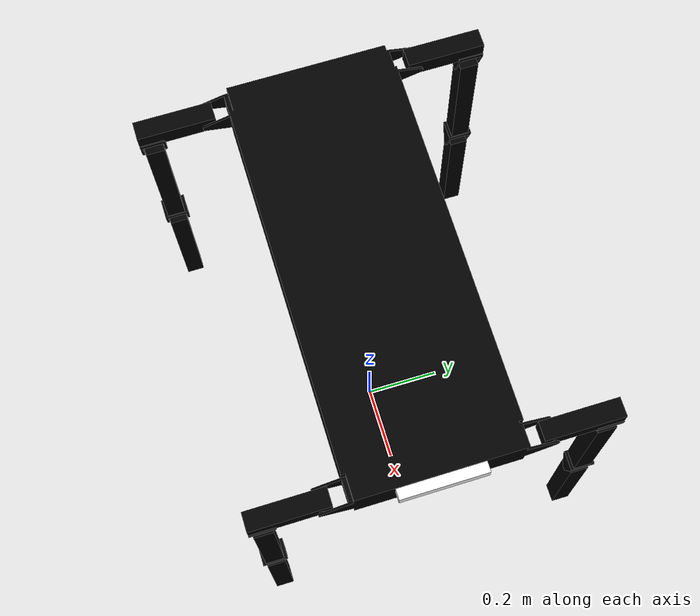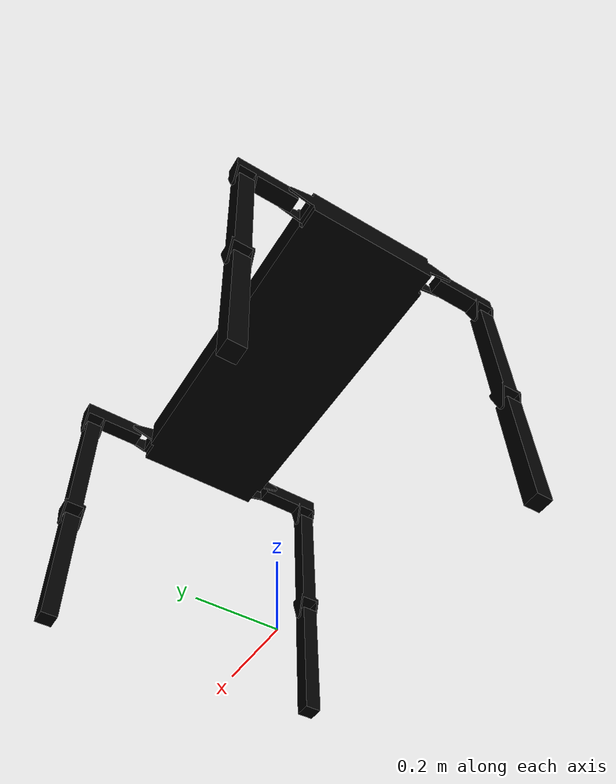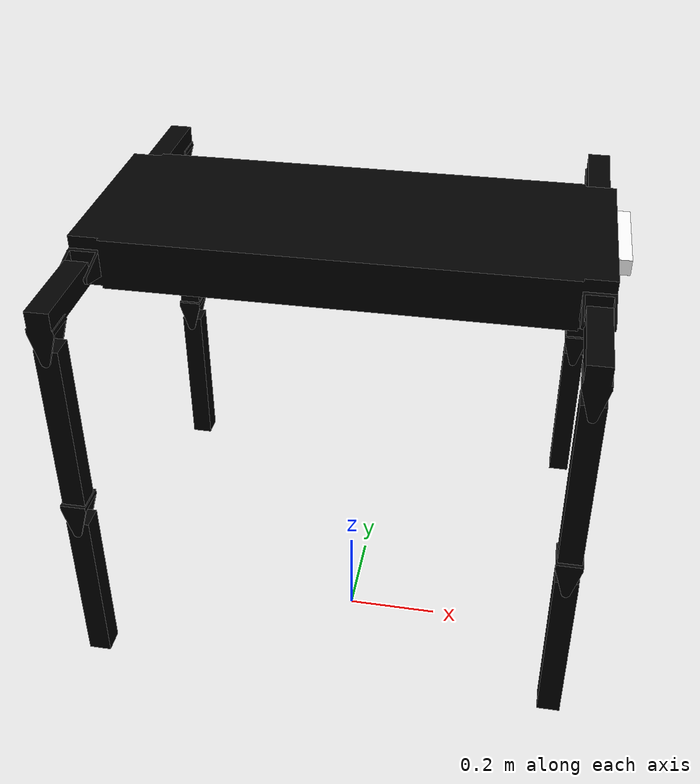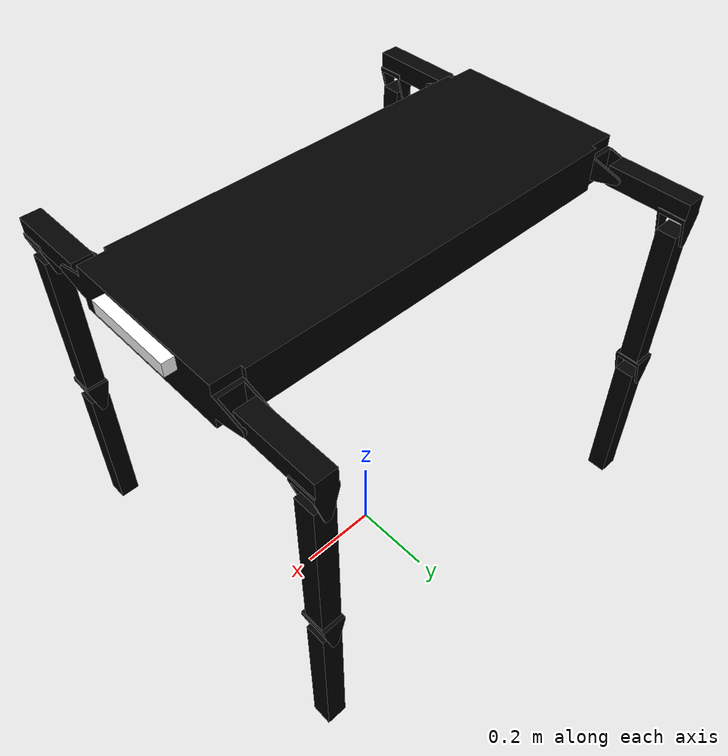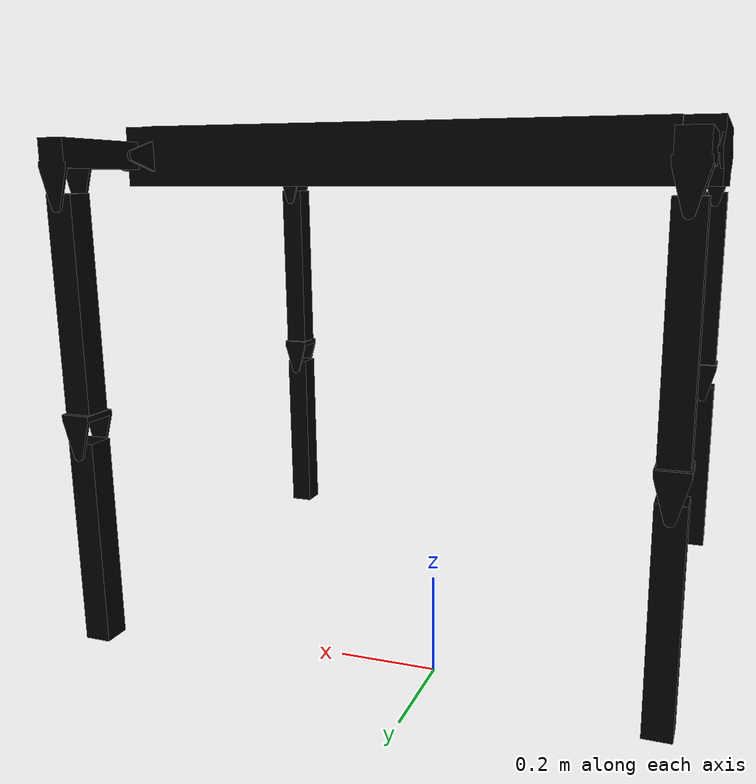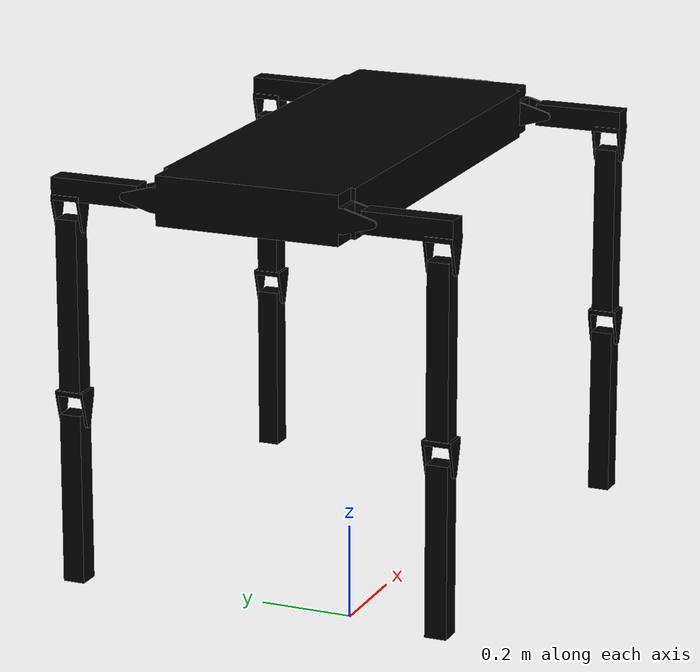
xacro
<?xml version="1.0"?>

<!-- A QUADRUPED NAMED TACHYON. I just like that name :) -->

<robot name="tachyon" xmlns:xacro="http://www.ros.org/wiki/xacro">

<!-- Lower and upper limits for the shoulder joint (base_link_x_y_leg) -->
<xacro:property name="lower_shoulder" value="-0.90"/>
<xacro:property name="upper_shoulder" value="0.90"/>

<xacro:property name="damp" value="0.3"/>
<xacro:property name="friction" value="0.1"/>

<xacro:include filename="$(find tachyon)/urdf/leg.xacro"/>
<xacro:include filename="$(find tachyon)/urdf/tachyon.gazebo"/>

<!-- Front and back legs -->
<xacro:leg limb_name="front_left" lower_upper_limb="-2.06" upper_upper_limb="2.06" lower_lower_limb="-2.20" upper_lower_limb="2.20"/>
<xacro:leg limb_name="front_right" lower_upper_limb="-2.06" upper_upper_limb="2.06" lower_lower_limb="-2.20" upper_lower_limb="2.20"/>
<xacro:leg limb_name="back_left" lower_upper_limb="-2.06" upper_upper_limb="2.06" lower_lower_limb="-2.20" upper_lower_limb="2.20"/>
<xacro:leg limb_name="back_right" lower_upper_limb="-2.06" upper_upper_limb="2.06" lower_lower_limb="-2.20" upper_lower_limb="2.20"/>

<xacro:macro name="default_inertial" params="z_value i_value mass">
    <inertial>
        <origin xyz="0 0 ${z_value}" rpy="0 0 0"/>
        <mass value="${mass}"/>
        <inertia ixx="${i_value}" ixy="0" ixz="0" iyy="${i_value}" iyz="0" izz="${i_value}"/>
    </inertial>
</xacro:macro>

<!-- Considering that model files are .STL, material is rather redundant *shrugs* -->
<xacro:macro name="sw_default_material">
    <material name="">
        <color rgba="0.792156862745098 0.819607843137255 0.933333333333333 1" />
    </material>
</xacro:macro>

<!-- Base Link -->
<link name="base_link">
    <visual>
        <origin xyz="0 0 1" rpy="0 0 0"/>
        <geometry>
            <mesh filename="package://tachyon/meshes/base_link.STL" />
        </geometry>
        <material name="">
        <color rgba="0 0 0 1" />
      </material>
    </visual>

    <collision>
        <origin xyz="0 0 1" rpy="0 0 0"/>
        <geometry>
            <box size="1 0.4 0.1"/>
        </geometry>
    </collision>

    <inertial>
        <origin
          xyz="-3.1155E-17 5.5984E-17 1"
          rpy="0 0 0" />
        <mass
          value="10" />
        <inertia
          ixx="0.14"
          ixy="8.3579E-18"
          ixz="1.1515E-16"
          izz="0.95"
          iyz="2.2791E-21"
          iyy="0.83" />
      </inertial>

</link>

<!-- Front Marker: to indicate the front of tachyon -->
<link name="front_marker">
    <visual>
        <origin xyz="0 0 0" rpy="0 0 0"/>
        <geometry>
            <box size="0.03 0.2 0.03"/>
        </geometry>
        <material name="">
        <color rgba="1 1 1 1" />
      </material>
    </visual>

    <collision>
        <origin xyz="0 0 0" rpy="0 0 0"/>
        <geometry>
            <box size="0.03 0.2 0.03"/>
        </geometry>
    </collision>
</link>

<joint name="base_link_to_front_marker" type="fixed">
    <parent link="base_link"/>
    <child link="front_marker"/>
    <origin xyz="0.51 0 1.03" rpy="0 0 0"/>
</joint>

<joint name="base_link_to_front_left_leg" type="revolute">
    <parent link="base_link"/>
    <child link="swing_link_front_left"/>
    <origin xyz="0.47 0.25825 1" rpy="0 0 3.14"/>
    <limit effort="1000" lower="${lower_shoulder}" upper="${upper_shoulder}" velocity="0.5"/>
    <axis xyz="1 0 0"/>
    <dynamics damping="${damp}" friction="${friction}" />
</joint>

<joint name="base_link_to_front_right_leg" type="revolute">
    <parent link="base_link"/>
    <child link="swing_link_front_right"/>
    <origin xyz="0.47 -0.25825 1" rpy="0 0 0"/>
    <limit effort="1000" lower="${lower_shoulder}" upper="${upper_shoulder}" velocity="0.5"/>
    <axis xyz="1 0 0"/>
    <dynamics damping="${damp}" friction="${friction}" />
</joint>

<joint name="base_link_to_back_left_leg" type="revolute">
    <parent link="base_link"/>
    <child link="swing_link_back_left"/>
    <origin xyz="-0.47 0.25825 1" rpy="0 0 3.14"/>
    <limit effort="1000" lower="${lower_shoulder}" upper="${upper_shoulder}" velocity="0.5"/>
    <axis xyz="1 0 0"/>
    <dynamics damping="${damp}" friction="${friction}" />
</joint>

<joint name="base_link_to_back_right_leg" type="revolute">
    <parent link="base_link"/>
    <child link="swing_link_back_right"/>
    <origin xyz="-0.47 -0.25825 1" rpy="0 0 0"/>
    <limit effort="1000" lower="${lower_shoulder}" upper="${upper_shoulder}" velocity="0.5"/>
    <axis xyz="1 0 0"/>
    <dynamics damping="${damp}" friction="${friction}" />
</joint>

<xacro:default_transmission name="base_to_front_left" joint_name="base_link_to_front_left_leg"/>

<xacro:default_transmission name="base_to_front_right" joint_name="base_link_to_front_right_leg"/>

<xacro:default_transmission name="base_to_back_left" joint_name="base_link_to_back_left_leg"/>

<xacro:default_transmission name="base_to_back_right" joint_name="base_link_to_back_right_leg"/>

</robot>

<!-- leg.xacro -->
<robot name="leg" xmlns:xacro="http://www.ros.org/wiki/xacro">

  <xacro:macro name="leg" params="limb_name lower_upper_limb upper_upper_limb lower_lower_limb upper_lower_limb">

    <xacro:property name="damp" value="0.3"/>
    <xacro:property name="friction" value="0.2"/>
    <xacro:property name="mu1" value="0.7"/>
    <xacro:property name="mu2" value="0.7"/>

    <xacro:macro name="default_transmission" params="name joint_name">
      <transmission name="transmission_for_${name}">
          <type>transmission_interface/SimpleTransmission</type>
          <joint name="${joint_name}">
              <hardwareInterface>hardware_interface/EffortJointInterface</hardwareInterface>
          </joint>

          <actuator name="motor_for_${name}">
              <hardwareInterface>hardware_interface/EffortJointInterface</hardwareInterface>
              <mechanicalReduction>1</mechanicalReduction>
          </actuator>

      </transmission>
    </xacro:macro>

  <!-- Swing link -->
  <link
    name="swing_link_${limb_name}">
    <inertial>
      <origin
        xyz="-7.9456E-18 -0.07256 -0.003468"
        rpy="0 0 0" />
      <mass
        value="0.39795" />
      <inertia
        ixx="0.0010374"
        ixy="7.6425E-21"
        ixz="2.8543E-20"
        izz="0.0010217"
        iyz="-3.1456E-05"
        iyy="0.00014871" />
    </inertial>
    <visual>
      <origin
        xyz="0 0 0"
        rpy="0 0 0" />
      <geometry>
        <mesh
          filename="package://tachyon/meshes/swing_link_x.STL" />
      </geometry>
      <material
        name="">
        <color
          rgba="0 0 0 1" />
      </material>
    </visual>
    <collision>
      <origin
        xyz="0 0 0"
        rpy="0 0 0" />
      <geometry>
        <mesh
          filename="package://tachyon/meshes/swing_link_x.STL" />
      </geometry>
    </collision>
  </link>

  <!-- Upper limb link -->
  <link
    name="upper_limb_link_${limb_name}">
    <inertial>
      <origin
        xyz="-3.4081E-17 -0.17 0.03"
        rpy="0 0 0" />
      <mass
        value="0.75908" />
      <inertia
        ixx="0.0073043"
        ixy="3.2495E-20"
        ixz="-3.9739E-20"
        iyy="0.00027252"
        iyz="4.4999E-20"
        izz="0.0072881" />
    </inertial>
    <visual>
      <origin
        xyz="0 0 0"
        rpy="0 0 0" />
      <geometry>
        <mesh
          filename="package://tachyon/meshes/upper_limb_link_x.STL" />
      </geometry>
      <material
        name="">
        <color
          rgba="0 0 0 1" />
      </material>
    </visual>
    <collision>
      <origin
        xyz="0 0 0"
        rpy="0 0 0" />
      <geometry>
        <mesh
          filename="package://tachyon/meshes/upper_limb_link_x.STL" />
      </geometry>
    </collision>
  </link>

  <!-- Swing link to upper limb joint -->
  <joint
    name="swing_link_to_upper_limb_link_joint_${limb_name}"
    type="revolute">
    <origin
      xyz="0 -0.1 -0.08075"
      rpy="1.5708 0 0" />
    <parent
      link="swing_link_${limb_name}" />
    <child
      link="upper_limb_link_${limb_name}" />
    <axis
      xyz="0 0 1" />
    <limit
      lower="${lower_upper_limb}"
      upper="${upper_upper_limb}"
      effort="1000"
      velocity="0.5" />
      <dynamics
      damping="${damp}"
      friction="${friction}" />
  </joint>

  <!-- Lower limb link -->
  <link
    name="lower_limb_link_${limb_name}">
    <inertial>
      <origin
        xyz="-1.0068E-16 -0.15594 0.0225"
        rpy="0 0 0" />
      <mass
        value="0.70447" />
      <inertia
        ixx="0.0072506"
        ixy="2.1119E-20"
        ixz="-3.4994E-20"
        iyy="0.00023845"
        iyz="6.4026E-20"
        izz="0.0072513" />
    </inertial>
    <visual>
      <origin
        xyz="0 0 0"
        rpy="0 0 0" />
      <geometry>
        <mesh
          filename="package://tachyon/meshes/lower_limb_link_x.STL" />
      </geometry>
      <material
        name="">
        <color
          rgba="0 0 0 1" />
      </material>
    </visual>
    <collision>
      <origin
        xyz="0 0 0"
        rpy="0 0 0" />
      <geometry>
        <mesh
          filename="package://tachyon/meshes/lower_limb_link_x.STL" />
      </geometry>
    </collision>
  </link>

  <!-- Upper limb to lower limb joint -->
  <joint
    name="upper_limb_link_to_lower_limb_link_joint_${limb_name}"
    type="revolute">
    <origin
      xyz="0 -0.39825 0.0075"
      rpy="0 0 0" />
    <parent
      link="upper_limb_link_${limb_name}" />
    <child
      link="lower_limb_link_${limb_name}" />
    <axis
      xyz="0 0 1" />
    <limit
      lower="${lower_lower_limb}"
      upper="${upper_lower_limb}"
      effort="1000"
      velocity="0.5" />
      <dynamics
      damping="${damp}"
      friction="${friction}" />
  </joint>

  <xacro:default_transmission name="swing_link_to_upper_limb_${limb_name}" joint_name="swing_link_to_upper_limb_link_joint_${limb_name}"/>

  <xacro:default_transmission name="upper_limb_to_lower_limb_${limb_name}" joint_name="upper_limb_link_to_lower_limb_link_joint_${limb_name}"/>

  <gazebo reference="swing_link_${limb_name}">
    <selfCollide>true</selfCollide>
    <mu1>${mu1}</mu1>
    <mu2>${mu2}</mu2>
  </gazebo>

  <gazebo reference="upper_limb_link_${limb_name}">
    <selfCollide>true</selfCollide>
    <mu1>${mu1}</mu1>
    <mu2>${mu2}</mu2>
  </gazebo>

  <gazebo reference="lower_limb_link_${limb_name}">
    <selfCollide>true</selfCollide>
    <mu1>${mu1}</mu1>
    <mu2>${mu2}</mu2>
  </gazebo>

</xacro:macro>

</robot>
